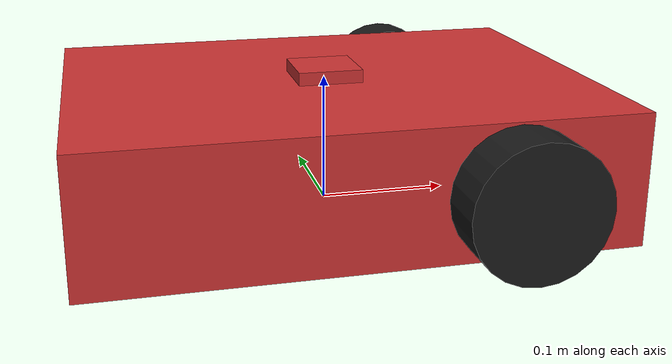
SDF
<?xml version="1.0"?>
<sdf version="1.6">
  <model name="diff_drive_robot_high_ratio">
    <!-- 로봇 본체 -->
    <link name="chassis">
      <pose>0 0 0.05 0 0 0</pose>
      <inertial>
        <mass>5.0</mass>
        <inertia>
          <ixx>0.0417</ixx>
          <iyy>0.0417</iyy>
          <izz>0.0833</izz>
          <ixy>0</ixy>
          <ixz>0</ixz>
          <iyz>0</iyz>
        </inertia>
      </inertial>
      <collision name="collision">
        <geometry>
          <box>
            <size>0.4 0.3 0.1</size>
          </box>
        </geometry>
      </collision>
      <visual name="visual">
        <geometry>
          <box>
            <size>0.4 0.3 0.1</size>
          </box>
        </geometry>
        <material>
          <ambient>0.8 0.2 0.2 1</ambient>
          <diffuse>0.8 0.2 0.2 1</diffuse>
          <specular>0.1 0.1 0.1 1</specular>
        </material>
      </visual>
    </link>

    <!-- 좌측 바퀴 모델 포함 -->
    <include>
      <uri>model://chapter8/models/diff_drive_robot_high_ratio/actuators/left_wheel</uri>
      <name>left_wheel</name>
      <pose>0.1 0.175 0.05 -1.5707 0 0</pose>
    </include>

    <!-- 우측 바퀴 모델 포함 -->
    <include>
      <uri>model://chapter8/models/diff_drive_robot_high_ratio/actuators/right_wheel</uri>
      <name>right_wheel</name>
      <pose>0.1 -0.175 0.05 -1.5707 0 0</pose>
    </include>

    <!-- 캐스터 휠 -->
    <link name="caster">
      <pose>-0.15 0 0.025 0 0 0</pose>
      <inertial>
        <mass>0.5</mass>
        <inertia>
          <ixx>0.0001</ixx>
          <iyy>0.0001</iyy>
          <izz>0.0001</izz>
          <ixy>0</ixy>
          <ixz>0</ixz>
          <iyz>0</iyz>
        </inertia>
      </inertial>
      <collision name="collision">
        <geometry>
          <sphere>
            <radius>0.025</radius>
          </sphere>
        </geometry>
        <surface>
          <friction>
            <ode>
              <mu>0.1</mu>
              <mu2>0.1</mu2>
            </ode>
          </friction>
        </surface>
      </collision>
      <visual name="visual">
        <geometry>
          <sphere>
            <radius>0.025</radius>
          </sphere>
        </geometry>
        <material>
          <ambient>0.3 0.3 0.3 1</ambient>
          <diffuse>0.3 0.3 0.3 1</diffuse>
          <specular>0.1 0.1 0.1 1</specular>
        </material>
      </visual>
    </link>

    <!-- 좌측 바퀴 조인트 - 기어비 3:1 (높은 기어비) -->
    <joint name="left_wheel_joint" type="revolute">
      <parent>chassis</parent>
      <child>left_wheel::left_wheel_link</child>
      <axis>
        <xyz>0 0 1</xyz>
        <limit>
          <lower>-1e+16</lower>
          <upper>1e+16</upper>
        </limit>
        <dynamics>
          <spring_reference>0</spring_reference>
          <spring_stiffness>0</spring_stiffness>
          <damping>0</damping>
          <friction>0</friction>
        </dynamics>
      </axis>
      <physics>
        <ode>
          <gear_ratio>3</gear_ratio>
        </ode>
      </physics>
    </joint>

    <!-- 우측 바퀴 조인트 - 기어비 3:1 (높은 기어비) -->
    <joint name="right_wheel_joint" type="revolute">
      <parent>chassis</parent>
      <child>right_wheel::right_wheel_link</child>
      <axis>
        <xyz>0 0 1</xyz>
        <limit>
          <lower>-1e+16</lower>
          <upper>1e+16</upper>
        </limit>
        <dynamics>
          <spring_reference>0</spring_reference>
          <spring_stiffness>0</spring_stiffness>
          <damping>0</damping>
          <friction>0</friction>
        </dynamics>
      </axis>
      <physics>
        <ode>
          <gear_ratio>3</gear_ratio>
        </ode>
      </physics>
    </joint>

    <!-- 캐스터 볼 조인트 -->
    <joint name="caster_joint" type="ball">
      <parent>chassis</parent>
      <child>caster</child>
    </joint>

    <!-- IMU 센서 모델 포함 -->
    <include>
      <uri>model://chapter8/models/diff_drive_robot_high_ratio/sensors/imu</uri>
      <name>imu</name>
      <pose>0 0 0.1 0 0 0</pose>
    </include>

    <!-- IMU 센서 고정 조인트 -->
    <joint name="imu_joint" type="fixed">
      <parent>chassis</parent>
      <child>imu::imu_link</child>
    </joint>

    <!-- 좌측 바퀴 제어를 위한 JointController 플러그인 -->
    <plugin
      filename="libgz-sim-joint-controller-system.so"
      name="ignition::gazebo::systems::JointController">
      <joint_name>left_wheel_joint</joint_name>
      <topic>/wheel_velocity</topic>
      <joint_type>velocity</joint_type>
      <p_gain>1</p_gain>
      <i_gain>0.1</i_gain>
      <d_gain>0.01</d_gain>
    </plugin>

    <!-- 우측 바퀴 제어를 위한 JointController 플러그인 -->
    <plugin
      filename="libgz-sim-joint-controller-system.so"
      name="ignition::gazebo::systems::JointController">
      <joint_name>right_wheel_joint</joint_name>
      <topic>/wheel_velocity</topic>
      <joint_type>velocity</joint_type>
      <p_gain>1</p_gain>
      <i_gain>0.1</i_gain>
      <d_gain>0.01</d_gain>
    </plugin>
  </model>
</sdf>

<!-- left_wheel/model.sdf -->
<sdf version="1.6">
  <model name="left_wheel">
    <link name="left_wheel_link">
      <pose>0 0 0 0 0 0</pose>
      <inertial>
        <mass>1.0</mass>
        <inertia>
          <ixx>0.0029</ixx>
          <iyy>0.0029</iyy>
          <izz>0.0052</izz>
          <ixy>0</ixy>
          <ixz>0</ixz>
          <iyz>0</iyz>
        </inertia>
      </inertial>
      <collision name="collision">
        <geometry>
          <cylinder>
            <radius>0.05</radius>
            <length>0.04</length>
          </cylinder>
        </geometry>
      </collision>
      <visual name="visual">
        <geometry>
          <cylinder>
            <radius>0.05</radius>
            <length>0.04</length>
          </cylinder>
        </geometry>
        <material>
          <ambient>0.1 0.1 0.1 1</ambient>
          <diffuse>0.1 0.1 0.1 1</diffuse>
          <specular>0.1 0.1 0.1 1</specular>
        </material>
      </visual>
    </link>
  </model>
</sdf>

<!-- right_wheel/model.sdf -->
<sdf version="1.6">
  <model name="right_wheel">
    <link name="right_wheel_link">
      <pose>0 0 0 0 0 0</pose>
      <inertial>
        <mass>1.0</mass>
        <inertia>
          <ixx>0.0029</ixx>
          <iyy>0.0029</iyy>
          <izz>0.0052</izz>
          <ixy>0</ixy>
          <ixz>0</ixz>
          <iyz>0</iyz>
        </inertia>
      </inertial>
      <collision name="collision">
        <geometry>
          <cylinder>
            <radius>0.05</radius>
            <length>0.04</length>
          </cylinder>
        </geometry>
      </collision>
      <visual name="visual">
        <geometry>
          <cylinder>
            <radius>0.05</radius>
            <length>0.04</length>
          </cylinder>
        </geometry>
        <material>
          <ambient>0.1 0.1 0.1 1</ambient>
          <diffuse>0.1 0.1 0.1 1</diffuse>
          <specular>0.1 0.1 0.1 1</specular>
        </material>
      </visual>
    </link>
  </model>
</sdf>

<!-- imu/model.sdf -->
<sdf version="1.6">
  <model name="imu_sensor">
    <link name="imu_link">
      <pose>0 0 0 0 0 0</pose>
      <inertial>
        <mass>0.1</mass>
        <inertia>
          <ixx>0.000001</ixx>
          <iyy>0.000001</iyy>
          <izz>0.000001</izz>
          <ixy>0</ixy>
          <ixz>0</ixz>
          <iyz>0</iyz>
        </inertia>
      </inertial>
      <collision name="collision">
        <geometry>
          <box>
            <size>0.05 0.05 0.02</size>
          </box>
        </geometry>
      </collision>
      <visual name="visual">
        <geometry>
          <box>
            <size>0.05 0.05 0.02</size>
          </box>
        </geometry>
        <material>
          <ambient>0.8 0.2 0.2 1</ambient>
          <diffuse>0.8 0.2 0.2 1</diffuse>
          <specular>0.1 0.1 0.1 1</specular>
        </material>
      </visual>
      <sensor name="imu_sensor" type="imu">
        <always_on>1</always_on>
        <update_rate>100</update_rate>
        <visualize>true</visualize>
        <topic>/imu</topic>
        <plugin filename="libignition-gazebo-imu-system.so"
                name="ignition::gazebo::systems::Imu">
        </plugin>
      </sensor>
    </link>
  </model>
</sdf>
